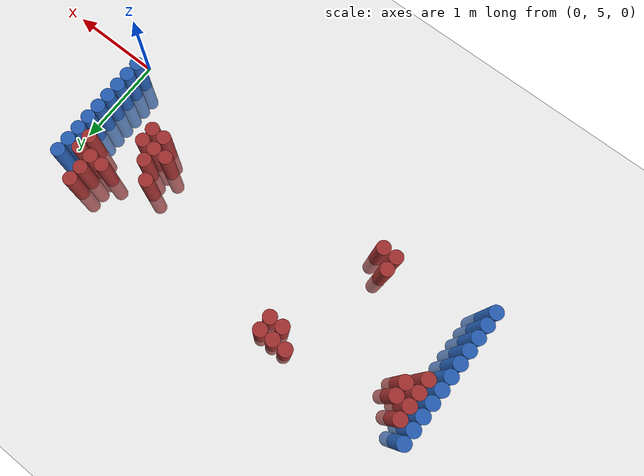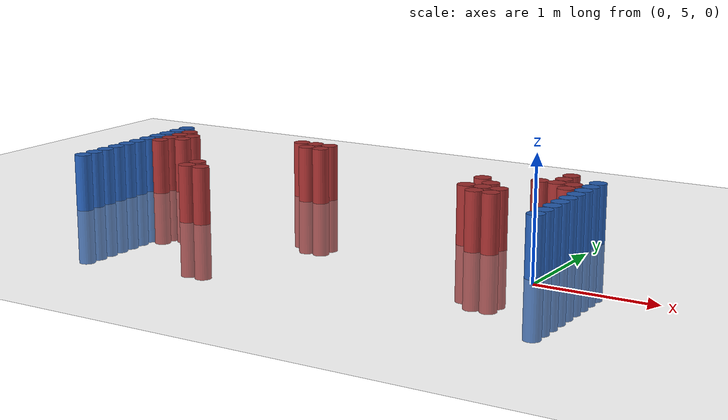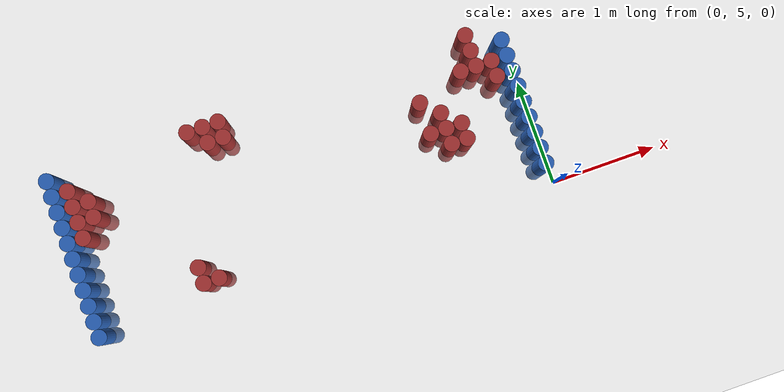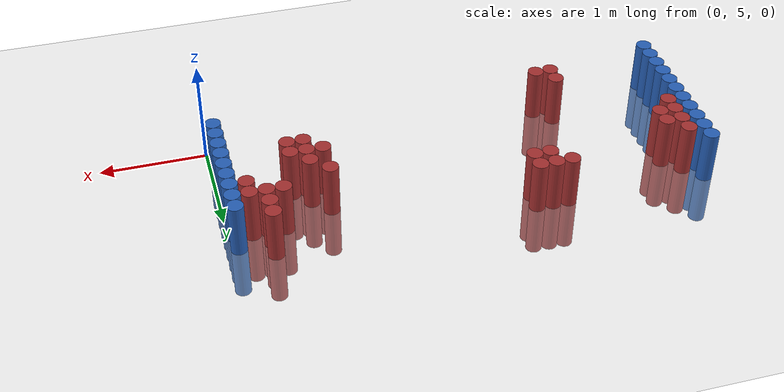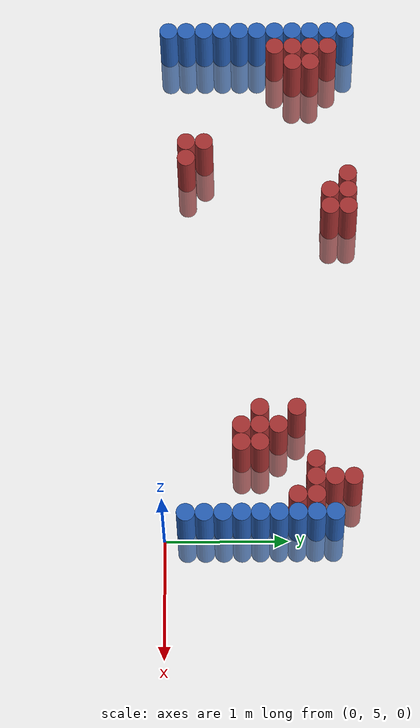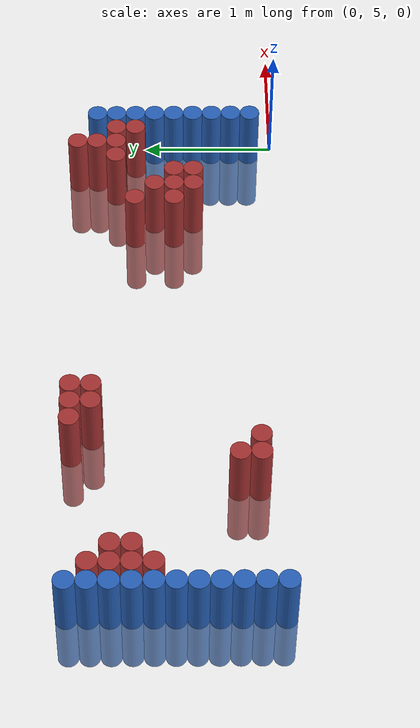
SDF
<sdf version="1.6">
 <world name="default">
  <model name="ground_plane">
   <static>1</static>
   <link name="link">
    <collision name="collision">
     <geometry><plane><normal>0 0 1</normal><size>100 100</size></plane></geometry>
     <surface><friction><ode><mu>100</mu><mu2>50</mu2></ode></friction></surface>
    </collision>
    <visual name="visual">
     <cast_shadows>0</cast_shadows>
     <geometry><plane><normal>0 0 1</normal><size>100 100</size></plane></geometry>
     <material>
      <script><uri>file://media/materials/scripts/gazebo.material</uri><name>Gazebo/Grey</name></script>
     </material>
    </visual>
   </link>
  </model>
  <model name="unit_cylinder_95">
   <static>1</static>
   <pose>-4.425000 5.025000 0.000000 0.000000 0.000000 0.000000</pose>
   <link name="link">
    <inertial>
     <mass>1</mass>
     <inertia><ixx>0.145833</ixx><ixy>0</ixy><ixz>0</ixz><iyy>0.145833</iyy><iyz>0</iyz><izz>0.125</izz></inertia>
    </inertial>
    <collision name="collision">
     <geometry><cylinder><radius>0.075000</radius><length>1</length></cylinder></geometry>
    </collision>
    <visual name="visual">
     <geometry><cylinder><radius>0.075000</radius><length>1</length></cylinder></geometry>
     <material>
      <ambient>0.152000 0.379000 0.720000 1</ambient>
      <diffuse>0.152000 0.379000 0.720000 1</diffuse>
     </material>
     <material>
      <script><name>Gazebo/Grey</name><uri>file://media/materials/scripts/gazebo.material</uri></script>
     </material>
    </visual>
   </link>
  </model>
  <model name="unit_cylinder_96">
   <static>1</static>
   <pose>-4.425000 5.175000 0.000000 0.000000 0.000000 0.000000</pose>
   <link name="link">
    <inertial>
     <mass>1</mass>
     <inertia><ixx>0.145833</ixx><ixy>0</ixy><ixz>0</ixz><iyy>0.145833</iyy><iyz>0</iyz><izz>0.125</izz></inertia>
    </inertial>
    <collision name="collision">
     <geometry><cylinder><radius>0.075000</radius><length>1</length></cylinder></geometry>
    </collision>
    <visual name="visual">
     <geometry><cylinder><radius>0.075000</radius><length>1</length></cylinder></geometry>
     <material>
      <ambient>0.152000 0.379000 0.720000 1</ambient>
      <diffuse>0.152000 0.379000 0.720000 1</diffuse>
     </material>
     <material>
      <script><name>Gazebo/Grey</name><uri>file://media/materials/scripts/gazebo.material</uri></script>
     </material>
    </visual>
   </link>
  </model>
  <model name="unit_cylinder_97">
   <static>1</static>
   <pose>-4.425000 5.325000 0.000000 0.000000 0.000000 0.000000</pose>
   <link name="link">
    <inertial>
     <mass>1</mass>
     <inertia><ixx>0.145833</ixx><ixy>0</ixy><ixz>0</ixz><iyy>0.145833</iyy><iyz>0</iyz><izz>0.125</izz></inertia>
    </inertial>
    <collision name="collision">
     <geometry><cylinder><radius>0.075000</radius><length>1</length></cylinder></geometry>
    </collision>
    <visual name="visual">
     <geometry><cylinder><radius>0.075000</radius><length>1</length></cylinder></geometry>
     <material>
      <ambient>0.152000 0.379000 0.720000 1</ambient>
      <diffuse>0.152000 0.379000 0.720000 1</diffuse>
     </material>
     <material>
      <script><name>Gazebo/Grey</name><uri>file://media/materials/scripts/gazebo.material</uri></script>
     </material>
    </visual>
   </link>
  </model>
  <model name="unit_cylinder_98">
   <static>1</static>
   <pose>-4.425000 5.475000 0.000000 0.000000 0.000000 0.000000</pose>
   <link name="link">
    <inertial>
     <mass>1</mass>
     <inertia><ixx>0.145833</ixx><ixy>0</ixy><ixz>0</ixz><iyy>0.145833</iyy><iyz>0</iyz><izz>0.125</izz></inertia>
    </inertial>
    <collision name="collision">
     <geometry><cylinder><radius>0.075000</radius><length>1</length></cylinder></geometry>
    </collision>
    <visual name="visual">
     <geometry><cylinder><radius>0.075000</radius><length>1</length></cylinder></geometry>
     <material>
      <ambient>0.152000 0.379000 0.720000 1</ambient>
      <diffuse>0.152000 0.379000 0.720000 1</diffuse>
     </material>
     <material>
      <script><name>Gazebo/Grey</name><uri>file://media/materials/scripts/gazebo.material</uri></script>
     </material>
    </visual>
   </link>
  </model>
  <model name="unit_cylinder_99">
   <static>1</static>
   <pose>-4.425000 5.625000 0.000000 0.000000 0.000000 0.000000</pose>
   <link name="link">
    <inertial>
     <mass>1</mass>
     <inertia><ixx>0.145833</ixx><ixy>0</ixy><ixz>0</ixz><iyy>0.145833</iyy><iyz>0</iyz><izz>0.125</izz></inertia>
    </inertial>
    <collision name="collision">
     <geometry><cylinder><radius>0.075000</radius><length>1</length></cylinder></geometry>
    </collision>
    <visual name="visual">
     <geometry><cylinder><radius>0.075000</radius><length>1</length></cylinder></geometry>
     <material>
      <ambient>0.152000 0.379000 0.720000 1</ambient>
      <diffuse>0.152000 0.379000 0.720000 1</diffuse>
     </material>
     <material>
      <script><name>Gazebo/Grey</name><uri>file://media/materials/scripts/gazebo.material</uri></script>
     </material>
    </visual>
   </link>
  </model>
  <model name="unit_cylinder_100">
   <static>1</static>
   <pose>-4.425000 5.775000 0.000000 0.000000 0.000000 0.000000</pose>
   <link name="link">
    <inertial>
     <mass>1</mass>
     <inertia><ixx>0.145833</ixx><ixy>0</ixy><ixz>0</ixz><iyy>0.145833</iyy><iyz>0</iyz><izz>0.125</izz></inertia>
    </inertial>
    <collision name="collision">
     <geometry><cylinder><radius>0.075000</radius><length>1</length></cylinder></geometry>
    </collision>
    <visual name="visual">
     <geometry><cylinder><radius>0.075000</radius><length>1</length></cylinder></geometry>
     <material>
      <ambient>0.152000 0.379000 0.720000 1</ambient>
      <diffuse>0.152000 0.379000 0.720000 1</diffuse>
     </material>
     <material>
      <script><name>Gazebo/Grey</name><uri>file://media/materials/scripts/gazebo.material</uri></script>
     </material>
    </visual>
   </link>
  </model>
  <model name="unit_cylinder_101">
   <static>1</static>
   <pose>-4.425000 5.925000 0.000000 0.000000 0.000000 0.000000</pose>
   <link name="link">
    <inertial>
     <mass>1</mass>
     <inertia><ixx>0.145833</ixx><ixy>0</ixy><ixz>0</ixz><iyy>0.145833</iyy><iyz>0</iyz><izz>0.125</izz></inertia>
    </inertial>
    <collision name="collision">
     <geometry><cylinder><radius>0.075000</radius><length>1</length></cylinder></geometry>
    </collision>
    <visual name="visual">
     <geometry><cylinder><radius>0.075000</radius><length>1</length></cylinder></geometry>
     <material>
      <ambient>0.152000 0.379000 0.720000 1</ambient>
      <diffuse>0.152000 0.379000 0.720000 1</diffuse>
     </material>
     <material>
      <script><name>Gazebo/Grey</name><uri>file://media/materials/scripts/gazebo.material</uri></script>
     </material>
    </visual>
   </link>
  </model>
  <model name="unit_cylinder_102">
   <static>1</static>
   <pose>-4.425000 6.075000 0.000000 0.000000 0.000000 0.000000</pose>
   <link name="link">
    <inertial>
     <mass>1</mass>
     <inertia><ixx>0.145833</ixx><ixy>0</ixy><ixz>0</ixz><iyy>0.145833</iyy><iyz>0</iyz><izz>0.125</izz></inertia>
    </inertial>
    <collision name="collision">
     <geometry><cylinder><radius>0.075000</radius><length>1</length></cylinder></geometry>
    </collision>
    <visual name="visual">
     <geometry><cylinder><radius>0.075000</radius><length>1</length></cylinder></geometry>
     <material>
      <ambient>0.152000 0.379000 0.720000 1</ambient>
      <diffuse>0.152000 0.379000 0.720000 1</diffuse>
     </material>
     <material>
      <script><name>Gazebo/Grey</name><uri>file://media/materials/scripts/gazebo.material</uri></script>
     </material>
    </visual>
   </link>
  </model>
  <model name="unit_cylinder_103">
   <static>1</static>
   <pose>-4.425000 6.225000 0.000000 0.000000 0.000000 0.000000</pose>
   <link name="link">
    <inertial>
     <mass>1</mass>
     <inertia><ixx>0.145833</ixx><ixy>0</ixy><ixz>0</ixz><iyy>0.145833</iyy><iyz>0</iyz><izz>0.125</izz></inertia>
    </inertial>
    <collision name="collision">
     <geometry><cylinder><radius>0.075000</radius><length>1</length></cylinder></geometry>
    </collision>
    <visual name="visual">
     <geometry><cylinder><radius>0.075000</radius><length>1</length></cylinder></geometry>
     <material>
      <ambient>0.152000 0.379000 0.720000 1</ambient>
      <diffuse>0.152000 0.379000 0.720000 1</diffuse>
     </material>
     <material>
      <script><name>Gazebo/Grey</name><uri>file://media/materials/scripts/gazebo.material</uri></script>
     </material>
    </visual>
   </link>
  </model>
  <model name="unit_cylinder_104">
   <static>1</static>
   <pose>-4.425000 6.375000 0.000000 0.000000 0.000000 0.000000</pose>
   <link name="link">
    <inertial>
     <mass>1</mass>
     <inertia><ixx>0.145833</ixx><ixy>0</ixy><ixz>0</ixz><iyy>0.145833</iyy><iyz>0</iyz><izz>0.125</izz></inertia>
    </inertial>
    <collision name="collision">
     <geometry><cylinder><radius>0.075000</radius><length>1</length></cylinder></geometry>
    </collision>
    <visual name="visual">
     <geometry><cylinder><radius>0.075000</radius><length>1</length></cylinder></geometry>
     <material>
      <ambient>0.152000 0.379000 0.720000 1</ambient>
      <diffuse>0.152000 0.379000 0.720000 1</diffuse>
     </material>
     <material>
      <script><name>Gazebo/Grey</name><uri>file://media/materials/scripts/gazebo.material</uri></script>
     </material>
    </visual>
   </link>
  </model>
  <model name="unit_cylinder_105">
   <static>1</static>
   <pose>-4.425000 6.525000 0.000000 0.000000 0.000000 0.000000</pose>
   <link name="link">
    <inertial>
     <mass>1</mass>
     <inertia><ixx>0.145833</ixx><ixy>0</ixy><ixz>0</ixz><iyy>0.145833</iyy><iyz>0</iyz><izz>0.125</izz></inertia>
    </inertial>
    <collision name="collision">
     <geometry><cylinder><radius>0.075000</radius><length>1</length></cylinder></geometry>
    </collision>
    <visual name="visual">
     <geometry><cylinder><radius>0.075000</radius><length>1</length></cylinder></geometry>
     <material>
      <ambient>0.152000 0.379000 0.720000 1</ambient>
      <diffuse>0.152000 0.379000 0.720000 1</diffuse>
     </material>
     <material>
      <script><name>Gazebo/Grey</name><uri>file://media/materials/scripts/gazebo.material</uri></script>
     </material>
    </visual>
   </link>
  </model>
  <model name="unit_cylinder_126">
   <static>1</static>
   <pose>-4.275000 5.925000 0.000000 0.000000 0.000000 0.000000</pose>
   <link name="link">
    <inertial>
     <mass>1</mass>
     <inertia><ixx>0.145833</ixx><ixy>0</ixy><ixz>0</ixz><iyy>0.145833</iyy><iyz>0</iyz><izz>0.125</izz></inertia>
    </inertial>
    <collision name="collision">
     <geometry><cylinder><radius>0.075000</radius><length>1</length></cylinder></geometry>
    </collision>
    <visual name="visual">
     <geometry><cylinder><radius>0.075000</radius><length>1</length></cylinder></geometry>
     <material>
      <ambient>0.648000 0.192000 0.192000 1</ambient>
      <diffuse>0.648000 0.192000 0.192000 1</diffuse>
     </material>
     <material>
      <script><name>Gazebo/Grey</name><uri>file://media/materials/scripts/gazebo.material</uri></script>
     </material>
    </visual>
   </link>
  </model>
  <model name="unit_cylinder_127">
   <static>1</static>
   <pose>-4.275000 6.075000 0.000000 0.000000 0.000000 0.000000</pose>
   <link name="link">
    <inertial>
     <mass>1</mass>
     <inertia><ixx>0.145833</ixx><ixy>0</ixy><ixz>0</ixz><iyy>0.145833</iyy><iyz>0</iyz><izz>0.125</izz></inertia>
    </inertial>
    <collision name="collision">
     <geometry><cylinder><radius>0.075000</radius><length>1</length></cylinder></geometry>
    </collision>
    <visual name="visual">
     <geometry><cylinder><radius>0.075000</radius><length>1</length></cylinder></geometry>
     <material>
      <ambient>0.648000 0.192000 0.192000 1</ambient>
      <diffuse>0.648000 0.192000 0.192000 1</diffuse>
     </material>
     <material>
      <script><name>Gazebo/Grey</name><uri>file://media/materials/scripts/gazebo.material</uri></script>
     </material>
    </visual>
   </link>
  </model>
  <model name="unit_cylinder_128">
   <static>1</static>
   <pose>-4.275000 6.225000 0.000000 0.000000 0.000000 0.000000</pose>
   <link name="link">
    <inertial>
     <mass>1</mass>
     <inertia><ixx>0.145833</ixx><ixy>0</ixy><ixz>0</ixz><iyy>0.145833</iyy><iyz>0</iyz><izz>0.125</izz></inertia>
    </inertial>
    <collision name="collision">
     <geometry><cylinder><radius>0.075000</radius><length>1</length></cylinder></geometry>
    </collision>
    <visual name="visual">
     <geometry><cylinder><radius>0.075000</radius><length>1</length></cylinder></geometry>
     <material>
      <ambient>0.648000 0.192000 0.192000 1</ambient>
      <diffuse>0.648000 0.192000 0.192000 1</diffuse>
     </material>
     <material>
      <script><name>Gazebo/Grey</name><uri>file://media/materials/scripts/gazebo.material</uri></script>
     </material>
    </visual>
   </link>
  </model>
  <model name="unit_cylinder_129">
   <static>1</static>
   <pose>-4.275000 6.375000 0.000000 0.000000 0.000000 0.000000</pose>
   <link name="link">
    <inertial>
     <mass>1</mass>
     <inertia><ixx>0.145833</ixx><ixy>0</ixy><ixz>0</ixz><iyy>0.145833</iyy><iyz>0</iyz><izz>0.125</izz></inertia>
    </inertial>
    <collision name="collision">
     <geometry><cylinder><radius>0.075000</radius><length>1</length></cylinder></geometry>
    </collision>
    <visual name="visual">
     <geometry><cylinder><radius>0.075000</radius><length>1</length></cylinder></geometry>
     <material>
      <ambient>0.648000 0.192000 0.192000 1</ambient>
      <diffuse>0.648000 0.192000 0.192000 1</diffuse>
     </material>
     <material>
      <script><name>Gazebo/Grey</name><uri>file://media/materials/scripts/gazebo.material</uri></script>
     </material>
    </visual>
   </link>
  </model>
  <model name="unit_cylinder_138">
   <static>1</static>
   <pose>-4.125000 6.075000 0.000000 0.000000 0.000000 0.000000</pose>
   <link name="link">
    <inertial>
     <mass>1</mass>
     <inertia><ixx>0.145833</ixx><ixy>0</ixy><ixz>0</ixz><iyy>0.145833</iyy><iyz>0</iyz><izz>0.125</izz></inertia>
    </inertial>
    <collision name="collision">
     <geometry><cylinder><radius>0.075000</radius><length>1</length></cylinder></geometry>
    </collision>
    <visual name="visual">
     <geometry><cylinder><radius>0.075000</radius><length>1</length></cylinder></geometry>
     <material>
      <ambient>0.648000 0.192000 0.192000 1</ambient>
      <diffuse>0.648000 0.192000 0.192000 1</diffuse>
     </material>
     <material>
      <script><name>Gazebo/Grey</name><uri>file://media/materials/scripts/gazebo.material</uri></script>
     </material>
    </visual>
   </link>
  </model>
  <model name="unit_cylinder_139">
   <static>1</static>
   <pose>-4.125000 6.225000 0.000000 0.000000 0.000000 0.000000</pose>
   <link name="link">
    <inertial>
     <mass>1</mass>
     <inertia><ixx>0.145833</ixx><ixy>0</ixy><ixz>0</ixz><iyy>0.145833</iyy><iyz>0</iyz><izz>0.125</izz></inertia>
    </inertial>
    <collision name="collision">
     <geometry><cylinder><radius>0.075000</radius><length>1</length></cylinder></geometry>
    </collision>
    <visual name="visual">
     <geometry><cylinder><radius>0.075000</radius><length>1</length></cylinder></geometry>
     <material>
      <ambient>0.648000 0.192000 0.192000 1</ambient>
      <diffuse>0.648000 0.192000 0.192000 1</diffuse>
     </material>
     <material>
      <script><name>Gazebo/Grey</name><uri>file://media/materials/scripts/gazebo.material</uri></script>
     </material>
    </visual>
   </link>
  </model>
  <model name="unit_cylinder_164">
   <static>1</static>
   <pose>-3.375000 5.175000 0.000000 0.000000 0.000000 0.000000</pose>
   <link name="link">
    <inertial>
     <mass>1</mass>
     <inertia><ixx>0.145833</ixx><ixy>0</ixy><ixz>0</ixz><iyy>0.145833</iyy><iyz>0</iyz><izz>0.125</izz></inertia>
    </inertial>
    <collision name="collision">
     <geometry><cylinder><radius>0.075000</radius><length>1</length></cylinder></geometry>
    </collision>
    <visual name="visual">
     <geometry><cylinder><radius>0.075000</radius><length>1</length></cylinder></geometry>
     <material>
      <ambient>0.648000 0.192000 0.192000 1</ambient>
      <diffuse>0.648000 0.192000 0.192000 1</diffuse>
     </material>
     <material>
      <script><name>Gazebo/Grey</name><uri>file://media/materials/scripts/gazebo.material</uri></script>
     </material>
    </visual>
   </link>
  </model>
  <model name="unit_cylinder_165">
   <static>1</static>
   <pose>-3.375000 5.325000 0.000000 0.000000 0.000000 0.000000</pose>
   <link name="link">
    <inertial>
     <mass>1</mass>
     <inertia><ixx>0.145833</ixx><ixy>0</ixy><ixz>0</ixz><iyy>0.145833</iyy><iyz>0</iyz><izz>0.125</izz></inertia>
    </inertial>
    <collision name="collision">
     <geometry><cylinder><radius>0.075000</radius><length>1</length></cylinder></geometry>
    </collision>
    <visual name="visual">
     <geometry><cylinder><radius>0.075000</radius><length>1</length></cylinder></geometry>
     <material>
      <ambient>0.648000 0.192000 0.192000 1</ambient>
      <diffuse>0.648000 0.192000 0.192000 1</diffuse>
     </material>
     <material>
      <script><name>Gazebo/Grey</name><uri>file://media/materials/scripts/gazebo.material</uri></script>
     </material>
    </visual>
   </link>
  </model>
  <model name="unit_cylinder_170">
   <static>1</static>
   <pose>-3.225000 5.175000 0.000000 0.000000 0.000000 0.000000</pose>
   <link name="link">
    <inertial>
     <mass>1</mass>
     <inertia><ixx>0.145833</ixx><ixy>0</ixy><ixz>0</ixz><iyy>0.145833</iyy><iyz>0</iyz><izz>0.125</izz></inertia>
    </inertial>
    <collision name="collision">
     <geometry><cylinder><radius>0.075000</radius><length>1</length></cylinder></geometry>
    </collision>
    <visual name="visual">
     <geometry><cylinder><radius>0.075000</radius><length>1</length></cylinder></geometry>
     <material>
      <ambient>0.648000 0.192000 0.192000 1</ambient>
      <diffuse>0.648000 0.192000 0.192000 1</diffuse>
     </material>
     <material>
      <script><name>Gazebo/Grey</name><uri>file://media/materials/scripts/gazebo.material</uri></script>
     </material>
    </visual>
   </link>
  </model>
  <model name="unit_cylinder_174">
   <static>1</static>
   <pose>-3.075000 6.525000 0.000000 0.000000 0.000000 0.000000</pose>
   <link name="link">
    <inertial>
     <mass>1</mass>
     <inertia><ixx>0.145833</ixx><ixy>0</ixy><ixz>0</ixz><iyy>0.145833</iyy><iyz>0</iyz><izz>0.125</izz></inertia>
    </inertial>
    <collision name="collision">
     <geometry><cylinder><radius>0.075000</radius><length>1</length></cylinder></geometry>
    </collision>
    <visual name="visual">
     <geometry><cylinder><radius>0.075000</radius><length>1</length></cylinder></geometry>
     <material>
      <ambient>0.648000 0.192000 0.192000 1</ambient>
      <diffuse>0.648000 0.192000 0.192000 1</diffuse>
     </material>
     <material>
      <script><name>Gazebo/Grey</name><uri>file://media/materials/scripts/gazebo.material</uri></script>
     </material>
    </visual>
   </link>
  </model>
  <model name="unit_cylinder_179">
   <static>1</static>
   <pose>-2.925000 6.375000 0.000000 0.000000 0.000000 0.000000</pose>
   <link name="link">
    <inertial>
     <mass>1</mass>
     <inertia><ixx>0.145833</ixx><ixy>0</ixy><ixz>0</ixz><iyy>0.145833</iyy><iyz>0</iyz><izz>0.125</izz></inertia>
    </inertial>
    <collision name="collision">
     <geometry><cylinder><radius>0.075000</radius><length>1</length></cylinder></geometry>
    </collision>
    <visual name="visual">
     <geometry><cylinder><radius>0.075000</radius><length>1</length></cylinder></geometry>
     <material>
      <ambient>0.648000 0.192000 0.192000 1</ambient>
      <diffuse>0.648000 0.192000 0.192000 1</diffuse>
     </material>
     <material>
      <script><name>Gazebo/Grey</name><uri>file://media/materials/scripts/gazebo.material</uri></script>
     </material>
    </visual>
   </link>
  </model>
  <model name="unit_cylinder_180">
   <static>1</static>
   <pose>-2.925000 6.525000 0.000000 0.000000 0.000000 0.000000</pose>
   <link name="link">
    <inertial>
     <mass>1</mass>
     <inertia><ixx>0.145833</ixx><ixy>0</ixy><ixz>0</ixz><iyy>0.145833</iyy><iyz>0</iyz><izz>0.125</izz></inertia>
    </inertial>
    <collision name="collision">
     <geometry><cylinder><radius>0.075000</radius><length>1</length></cylinder></geometry>
    </collision>
    <visual name="visual">
     <geometry><cylinder><radius>0.075000</radius><length>1</length></cylinder></geometry>
     <material>
      <ambient>0.648000 0.192000 0.192000 1</ambient>
      <diffuse>0.648000 0.192000 0.192000 1</diffuse>
     </material>
     <material>
      <script><name>Gazebo/Grey</name><uri>file://media/materials/scripts/gazebo.material</uri></script>
     </material>
    </visual>
   </link>
  </model>
  <model name="unit_cylinder_188">
   <static>1</static>
   <pose>-2.775000 6.375000 0.000000 0.000000 0.000000 0.000000</pose>
   <link name="link">
    <inertial>
     <mass>1</mass>
     <inertia><ixx>0.145833</ixx><ixy>0</ixy><ixz>0</ixz><iyy>0.145833</iyy><iyz>0</iyz><izz>0.125</izz></inertia>
    </inertial>
    <collision name="collision">
     <geometry><cylinder><radius>0.075000</radius><length>1</length></cylinder></geometry>
    </collision>
    <visual name="visual">
     <geometry><cylinder><radius>0.075000</radius><length>1</length></cylinder></geometry>
     <material>
      <ambient>0.648000 0.192000 0.192000 1</ambient>
      <diffuse>0.648000 0.192000 0.192000 1</diffuse>
     </material>
     <material>
      <script><name>Gazebo/Grey</name><uri>file://media/materials/scripts/gazebo.material</uri></script>
     </material>
    </visual>
   </link>
  </model>
  <model name="unit_cylinder_189">
   <static>1</static>
   <pose>-2.775000 6.525000 0.000000 0.000000 0.000000 0.000000</pose>
   <link name="link">
    <inertial>
     <mass>1</mass>
     <inertia><ixx>0.145833</ixx><ixy>0</ixy><ixz>0</ixz><iyy>0.145833</iyy><iyz>0</iyz><izz>0.125</izz></inertia>
    </inertial>
    <collision name="collision">
     <geometry><cylinder><radius>0.075000</radius><length>1</length></cylinder></geometry>
    </collision>
    <visual name="visual">
     <geometry><cylinder><radius>0.075000</radius><length>1</length></cylinder></geometry>
     <material>
      <ambient>0.648000 0.192000 0.192000 1</ambient>
      <diffuse>0.648000 0.192000 0.192000 1</diffuse>
     </material>
     <material>
      <script><name>Gazebo/Grey</name><uri>file://media/materials/scripts/gazebo.material</uri></script>
     </material>
    </visual>
   </link>
  </model>
  <model name="unit_cylinder_213">
   <static>1</static>
   <pose>-0.975000 5.775000 0.000000 0.000000 0.000000 0.000000</pose>
   <link name="link">
    <inertial>
     <mass>1</mass>
     <inertia><ixx>0.145833</ixx><ixy>0</ixy><ixz>0</ixz><iyy>0.145833</iyy><iyz>0</iyz><izz>0.125</izz></inertia>
    </inertial>
    <collision name="collision">
     <geometry><cylinder><radius>0.075000</radius><length>1</length></cylinder></geometry>
    </collision>
    <visual name="visual">
     <geometry><cylinder><radius>0.075000</radius><length>1</length></cylinder></geometry>
     <material>
      <ambient>0.648000 0.192000 0.192000 1</ambient>
      <diffuse>0.648000 0.192000 0.192000 1</diffuse>
     </material>
     <material>
      <script><name>Gazebo/Grey</name><uri>file://media/materials/scripts/gazebo.material</uri></script>
     </material>
    </visual>
   </link>
  </model>
  <model name="unit_cylinder_214">
   <static>1</static>
   <pose>-0.975000 6.075000 0.000000 0.000000 0.000000 0.000000</pose>
   <link name="link">
    <inertial>
     <mass>1</mass>
     <inertia><ixx>0.145833</ixx><ixy>0</ixy><ixz>0</ixz><iyy>0.145833</iyy><iyz>0</iyz><izz>0.125</izz></inertia>
    </inertial>
    <collision name="collision">
     <geometry><cylinder><radius>0.075000</radius><length>1</length></cylinder></geometry>
    </collision>
    <visual name="visual">
     <geometry><cylinder><radius>0.075000</radius><length>1</length></cylinder></geometry>
     <material>
      <ambient>0.648000 0.192000 0.192000 1</ambient>
      <diffuse>0.648000 0.192000 0.192000 1</diffuse>
     </material>
     <material>
      <script><name>Gazebo/Grey</name><uri>file://media/materials/scripts/gazebo.material</uri></script>
     </material>
    </visual>
   </link>
  </model>
  <model name="unit_cylinder_216">
   <static>1</static>
   <pose>-0.825000 5.625000 0.000000 0.000000 0.000000 0.000000</pose>
   <link name="link">
    <inertial>
     <mass>1</mass>
     <inertia><ixx>0.145833</ixx><ixy>0</ixy><ixz>0</ixz><iyy>0.145833</iyy><iyz>0</iyz><izz>0.125</izz></inertia>
    </inertial>
    <collision name="collision">
     <geometry><cylinder><radius>0.075000</radius><length>1</length></cylinder></geometry>
    </collision>
    <visual name="visual">
     <geometry><cylinder><radius>0.075000</radius><length>1</length></cylinder></geometry>
     <material>
      <ambient>0.648000 0.192000 0.192000 1</ambient>
      <diffuse>0.648000 0.192000 0.192000 1</diffuse>
     </material>
     <material>
      <script><name>Gazebo/Grey</name><uri>file://media/materials/scripts/gazebo.material</uri></script>
     </material>
    </visual>
   </link>
  </model>
  <model name="unit_cylinder_217">
   <static>1</static>
   <pose>-0.825000 5.775000 0.000000 0.000000 0.000000 0.000000</pose>
   <link name="link">
    <inertial>
     <mass>1</mass>
     <inertia><ixx>0.145833</ixx><ixy>0</ixy><ixz>0</ixz><iyy>0.145833</iyy><iyz>0</iyz><izz>0.125</izz></inertia>
    </inertial>
    <collision name="collision">
     <geometry><cylinder><radius>0.075000</radius><length>1</length></cylinder></geometry>
    </collision>
    <visual name="visual">
     <geometry><cylinder><radius>0.075000</radius><length>1</length></cylinder></geometry>
     <material>
      <ambient>0.648000 0.192000 0.192000 1</ambient>
      <diffuse>0.648000 0.192000 0.192000 1</diffuse>
     </material>
     <material>
      <script><name>Gazebo/Grey</name><uri>file://media/materials/scripts/gazebo.material</uri></script>
     </material>
    </visual>
   </link>
  </model>
  <model name="unit_cylinder_218">
   <static>1</static>
   <pose>-0.825000 5.925000 0.000000 0.000000 0.000000 0.000000</pose>
   <link name="link">
    <inertial>
     <mass>1</mass>
     <inertia><ixx>0.145833</ixx><ixy>0</ixy><ixz>0</ixz><iyy>0.145833</iyy><iyz>0</iyz><izz>0.125</izz></inertia>
    </inertial>
    <collision name="collision">
     <geometry><cylinder><radius>0.075000</radius><length>1</length></cylinder></geometry>
    </collision>
    <visual name="visual">
     <geometry><cylinder><radius>0.075000</radius><length>1</length></cylinder></geometry>
     <material>
      <ambient>0.648000 0.192000 0.192000 1</ambient>
      <diffuse>0.648000 0.192000 0.192000 1</diffuse>
     </material>
     <material>
      <script><name>Gazebo/Grey</name><uri>file://media/materials/scripts/gazebo.material</uri></script>
     </material>
    </visual>
   </link>
  </model>
  <model name="unit_cylinder_221">
   <static>1</static>
   <pose>-0.675000 5.625000 0.000000 0.000000 0.000000 0.000000</pose>
   <link name="link">
    <inertial>
     <mass>1</mass>
     <inertia><ixx>0.145833</ixx><ixy>0</ixy><ixz>0</ixz><iyy>0.145833</iyy><iyz>0</iyz><izz>0.125</izz></inertia>
    </inertial>
    <collision name="collision">
     <geometry><cylinder><radius>0.075000</radius><length>1</length></cylinder></geometry>
    </collision>
    <visual name="visual">
     <geometry><cylinder><radius>0.075000</radius><length>1</length></cylinder></geometry>
     <material>
      <ambient>0.648000 0.192000 0.192000 1</ambient>
      <diffuse>0.648000 0.192000 0.192000 1</diffuse>
     </material>
     <material>
      <script><name>Gazebo/Grey</name><uri>file://media/materials/scripts/gazebo.material</uri></script>
     </material>
    </visual>
   </link>
  </model>
  <model name="unit_cylinder_222">
   <static>1</static>
   <pose>-0.675000 5.775000 0.000000 0.000000 0.000000 0.000000</pose>
   <link name="link">
    <inertial>
     <mass>1</mass>
     <inertia><ixx>0.145833</ixx><ixy>0</ixy><ixz>0</ixz><iyy>0.145833</iyy><iyz>0</iyz><izz>0.125</izz></inertia>
    </inertial>
    <collision name="collision">
     <geometry><cylinder><radius>0.075000</radius><length>1</length></cylinder></geometry>
    </collision>
    <visual name="visual">
     <geometry><cylinder><radius>0.075000</radius><length>1</length></cylinder></geometry>
     <material>
      <ambient>0.648000 0.192000 0.192000 1</ambient>
      <diffuse>0.648000 0.192000 0.192000 1</diffuse>
     </material>
     <material>
      <script><name>Gazebo/Grey</name><uri>file://media/materials/scripts/gazebo.material</uri></script>
     </material>
    </visual>
   </link>
  </model>
  <model name="unit_cylinder_223">
   <static>1</static>
   <pose>-0.525000 6.225000 0.000000 0.000000 0.000000 0.000000</pose>
   <link name="link">
    <inertial>
     <mass>1</mass>
     <inertia><ixx>0.145833</ixx><ixy>0</ixy><ixz>0</ixz><iyy>0.145833</iyy><iyz>0</iyz><izz>0.125</izz></inertia>
    </inertial>
    <collision name="collision">
     <geometry><cylinder><radius>0.075000</radius><length>1</length></cylinder></geometry>
    </collision>
    <visual name="visual">
     <geometry><cylinder><radius>0.075000</radius><length>1</length></cylinder></geometry>
     <material>
      <ambient>0.648000 0.192000 0.192000 1</ambient>
      <diffuse>0.648000 0.192000 0.192000 1</diffuse>
     </material>
     <material>
      <script><name>Gazebo/Grey</name><uri>file://media/materials/scripts/gazebo.material</uri></script>
     </material>
    </visual>
   </link>
  </model>
  <model name="unit_cylinder_229">
   <static>1</static>
   <pose>-0.375000 6.225000 0.000000 0.000000 0.000000 0.000000</pose>
   <link name="link">
    <inertial>
     <mass>1</mass>
     <inertia><ixx>0.145833</ixx><ixy>0</ixy><ixz>0</ixz><iyy>0.145833</iyy><iyz>0</iyz><izz>0.125</izz></inertia>
    </inertial>
    <collision name="collision">
     <geometry><cylinder><radius>0.075000</radius><length>1</length></cylinder></geometry>
    </collision>
    <visual name="visual">
     <geometry><cylinder><radius>0.075000</radius><length>1</length></cylinder></geometry>
     <material>
      <ambient>0.648000 0.192000 0.192000 1</ambient>
      <diffuse>0.648000 0.192000 0.192000 1</diffuse>
     </material>
     <material>
      <script><name>Gazebo/Grey</name><uri>file://media/materials/scripts/gazebo.material</uri></script>
     </material>
    </visual>
   </link>
  </model>
  <model name="unit_cylinder_230">
   <static>1</static>
   <pose>-0.375000 6.375000 0.000000 0.000000 0.000000 0.000000</pose>
   <link name="link">
    <inertial>
     <mass>1</mass>
     <inertia><ixx>0.145833</ixx><ixy>0</ixy><ixz>0</ixz><iyy>0.145833</iyy><iyz>0</iyz><izz>0.125</izz></inertia>
    </inertial>
    <collision name="collision">
     <geometry><cylinder><radius>0.075000</radius><length>1</length></cylinder></geometry>
    </collision>
    <visual name="visual">
     <geometry><cylinder><radius>0.075000</radius><length>1</length></cylinder></geometry>
     <material>
      <ambient>0.648000 0.192000 0.192000 1</ambient>
      <diffuse>0.648000 0.192000 0.192000 1</diffuse>
     </material>
     <material>
      <script><name>Gazebo/Grey</name><uri>file://media/materials/scripts/gazebo.material</uri></script>
     </material>
    </visual>
   </link>
  </model>
  <model name="unit_cylinder_231">
   <static>1</static>
   <pose>-0.375000 6.525000 0.000000 0.000000 0.000000 0.000000</pose>
   <link name="link">
    <inertial>
     <mass>1</mass>
     <inertia><ixx>0.145833</ixx><ixy>0</ixy><ixz>0</ixz><iyy>0.145833</iyy><iyz>0</iyz><izz>0.125</izz></inertia>
    </inertial>
    <collision name="collision">
     <geometry><cylinder><radius>0.075000</radius><length>1</length></cylinder></geometry>
    </collision>
    <visual name="visual">
     <geometry><cylinder><radius>0.075000</radius><length>1</length></cylinder></geometry>
     <material>
      <ambient>0.648000 0.192000 0.192000 1</ambient>
      <diffuse>0.648000 0.192000 0.192000 1</diffuse>
     </material>
     <material>
      <script><name>Gazebo/Grey</name><uri>file://media/materials/scripts/gazebo.material</uri></script>
     </material>
    </visual>
   </link>
  </model>
  <model name="unit_cylinder_243">
   <static>1</static>
   <pose>-0.225000 6.075000 0.000000 0.000000 0.000000 0.000000</pose>
   <link name="link">
    <inertial>
     <mass>1</mass>
     <inertia><ixx>0.145833</ixx><ixy>0</ixy><ixz>0</ixz><iyy>0.145833</iyy><iyz>0</iyz><izz>0.125</izz></inertia>
    </inertial>
    <collision name="collision">
     <geometry><cylinder><radius>0.075000</radius><length>1</length></cylinder></geometry>
    </collision>
    <visual name="visual">
     <geometry><cylinder><radius>0.075000</radius><length>1</length></cylinder></geometry>
     <material>
      <ambient>0.648000 0.192000 0.192000 1</ambient>
      <diffuse>0.648000 0.192000 0.192000 1</diffuse>
     </material>
     <material>
      <script><name>Gazebo/Grey</name><uri>file://media/materials/scripts/gazebo.material</uri></script>
     </material>
    </visual>
   </link>
  </model>
  <model name="unit_cylinder_244">
   <static>1</static>
   <pose>-0.225000 6.225000 0.000000 0.000000 0.000000 0.000000</pose>
   <link name="link">
    <inertial>
     <mass>1</mass>
     <inertia><ixx>0.145833</ixx><ixy>0</ixy><ixz>0</ixz><iyy>0.145833</iyy><iyz>0</iyz><izz>0.125</izz></inertia>
    </inertial>
    <collision name="collision">
     <geometry><cylinder><radius>0.075000</radius><length>1</length></cylinder></geometry>
    </collision>
    <visual name="visual">
     <geometry><cylinder><radius>0.075000</radius><length>1</length></cylinder></geometry>
     <material>
      <ambient>0.648000 0.192000 0.192000 1</ambient>
      <diffuse>0.648000 0.192000 0.192000 1</diffuse>
     </material>
     <material>
      <script><name>Gazebo/Grey</name><uri>file://media/materials/scripts/gazebo.material</uri></script>
     </material>
    </visual>
   </link>
  </model>
  <model name="unit_cylinder_254">
   <static>1</static>
   <pose>-0.075000 5.175000 0.000000 0.000000 0.000000 0.000000</pose>
   <link name="link">
    <inertial>
     <mass>1</mass>
     <inertia><ixx>0.145833</ixx><ixy>0</ixy><ixz>0</ixz><iyy>0.145833</iyy><iyz>0</iyz><izz>0.125</izz></inertia>
    </inertial>
    <collision name="collision">
     <geometry><cylinder><radius>0.075000</radius><length>1</length></cylinder></geometry>
    </collision>
    <visual name="visual">
     <geometry><cylinder><radius>0.075000</radius><length>1</length></cylinder></geometry>
     <material>
      <ambient>0.152000 0.379000 0.720000 1</ambient>
      <diffuse>0.152000 0.379000 0.720000 1</diffuse>
     </material>
     <material>
      <script><name>Gazebo/Grey</name><uri>file://media/materials/scripts/gazebo.material</uri></script>
     </material>
    </visual>
   </link>
  </model>
  <model name="unit_cylinder_255">
   <static>1</static>
   <pose>-0.075000 5.325000 0.000000 0.000000 0.000000 0.000000</pose>
   <link name="link">
    <inertial>
     <mass>1</mass>
     <inertia><ixx>0.145833</ixx><ixy>0</ixy><ixz>0</ixz><iyy>0.145833</iyy><iyz>0</iyz><izz>0.125</izz></inertia>
    </inertial>
    <collision name="collision">
     <geometry><cylinder><radius>0.075000</radius><length>1</length></cylinder></geometry>
    </collision>
    <visual name="visual">
     <geometry><cylinder><radius>0.075000</radius><length>1</length></cylinder></geometry>
     <material>
      <ambient>0.152000 0.379000 0.720000 1</ambient>
      <diffuse>0.152000 0.379000 0.720000 1</diffuse>
     </material>
     <material>
      <script><name>Gazebo/Grey</name><uri>file://media/materials/scripts/gazebo.material</uri></script>
     </material>
    </visual>
   </link>
  </model>
  <model name="unit_cylinder_256">
   <static>1</static>
   <pose>-0.075000 5.475000 0.000000 0.000000 0.000000 0.000000</pose>
   <link name="link">
    <inertial>
     <mass>1</mass>
     <inertia><ixx>0.145833</ixx><ixy>0</ixy><ixz>0</ixz><iyy>0.145833</iyy><iyz>0</iyz><izz>0.125</izz></inertia>
    </inertial>
    <collision name="collision">
     <geometry><cylinder><radius>0.075000</radius><length>1</length></cylinder></geometry>
    </collision>
    <visual name="visual">
     <geometry><cylinder><radius>0.075000</radius><length>1</length></cylinder></geometry>
     <material>
      <ambient>0.152000 0.379000 0.720000 1</ambient>
      <diffuse>0.152000 0.379000 0.720000 1</diffuse>
     </material>
     <material>
      <script><name>Gazebo/Grey</name><uri>file://media/materials/scripts/gazebo.material</uri></script>
     </material>
    </visual>
   </link>
  </model>
  <model name="unit_cylinder_257">
   <static>1</static>
   <pose>-0.075000 5.625000 0.000000 0.000000 0.000000 0.000000</pose>
   <link name="link">
    <inertial>
     <mass>1</mass>
     <inertia><ixx>0.145833</ixx><ixy>0</ixy><ixz>0</ixz><iyy>0.145833</iyy><iyz>0</iyz><izz>0.125</izz></inertia>
    </inertial>
    <collision name="collision">
     <geometry><cylinder><radius>0.075000</radius><length>1</length></cylinder></geometry>
    </collision>
    <visual name="visual">
     <geometry><cylinder><radius>0.075000</radius><length>1</length></cylinder></geometry>
     <material>
      <ambient>0.152000 0.379000 0.720000 1</ambient>
      <diffuse>0.152000 0.379000 0.720000 1</diffuse>
     </material>
     <material>
      <script><name>Gazebo/Grey</name><uri>file://media/materials/scripts/gazebo.material</uri></script>
     </material>
    </visual>
   </link>
  </model>
  <model name="unit_cylinder_258">
   <static>1</static>
   <pose>-0.075000 5.775000 0.000000 0.000000 0.000000 0.000000</pose>
   <link name="link">
    <inertial>
     <mass>1</mass>
     <inertia><ixx>0.145833</ixx><ixy>0</ixy><ixz>0</ixz><iyy>0.145833</iyy><iyz>0</iyz><izz>0.125</izz></inertia>
    </inertial>
    <collision name="collision">
     <geometry><cylinder><radius>0.075000</radius><length>1</length></cylinder></geometry>
    </collision>
    <visual name="visual">
     <geometry><cylinder><radius>0.075000</radius><length>1</length></cylinder></geometry>
     <material>
      <ambient>0.152000 0.379000 0.720000 1</ambient>
      <diffuse>0.152000 0.379000 0.720000 1</diffuse>
     </material>
     <material>
      <script><name>Gazebo/Grey</name><uri>file://media/materials/scripts/gazebo.material</uri></script>
     </material>
    </visual>
   </link>
  </model>
  <model name="unit_cylinder_259">
   <static>1</static>
   <pose>-0.075000 5.925000 0.000000 0.000000 0.000000 0.000000</pose>
   <link name="link">
    <inertial>
     <mass>1</mass>
     <inertia><ixx>0.145833</ixx><ixy>0</ixy><ixz>0</ixz><iyy>0.145833</iyy><iyz>0</iyz><izz>0.125</izz></inertia>
    </inertial>
    <collision name="collision">
     <geometry><cylinder><radius>0.075000</radius><length>1</length></cylinder></geometry>
    </collision>
    <visual name="visual">
     <geometry><cylinder><radius>0.075000</radius><length>1</length></cylinder></geometry>
     <material>
      <ambient>0.152000 0.379000 0.720000 1</ambient>
      <diffuse>0.152000 0.379000 0.720000 1</diffuse>
     </material>
     <material>
      <script><name>Gazebo/Grey</name><uri>file://media/materials/scripts/gazebo.material</uri></script>
     </material>
    </visual>
   </link>
  </model>
  <model name="unit_cylinder_260">
   <static>1</static>
   <pose>-0.075000 6.075000 0.000000 0.000000 0.000000 0.000000</pose>
   <link name="link">
    <inertial>
     <mass>1</mass>
     <inertia><ixx>0.145833</ixx><ixy>0</ixy><ixz>0</ixz><iyy>0.145833</iyy><iyz>0</iyz><izz>0.125</izz></inertia>
    </inertial>
    <collision name="collision">
     <geometry><cylinder><radius>0.075000</radius><length>1</length></cylinder></geometry>
    </collision>
    <visual name="visual">
     <geometry><cylinder><radius>0.075000</radius><length>1</length></cylinder></geometry>
     <material>
      <ambient>0.152000 0.379000 0.720000 1</ambient>
      <diffuse>0.152000 0.379000 0.720000 1</diffuse>
     </material>
     <material>
      <script><name>Gazebo/Grey</name><uri>file://media/materials/scripts/gazebo.material</uri></script>
     </material>
    </visual>
   </link>
  </model>
  <model name="unit_cylinder_261">
   <static>1</static>
   <pose>-0.075000 6.225000 0.000000 0.000000 0.000000 0.000000</pose>
   <link name="link">
    <inertial>
     <mass>1</mass>
     <inertia><ixx>0.145833</ixx><ixy>0</ixy><ixz>0</ixz><iyy>0.145833</iyy><iyz>0</iyz><izz>0.125</izz></inertia>
    </inertial>
    <collision name="collision">
     <geometry><cylinder><radius>0.075000</radius><length>1</length></cylinder></geometry>
    </collision>
    <visual name="visual">
     <geometry><cylinder><radius>0.075000</radius><length>1</length></cylinder></geometry>
     <material>
      <ambient>0.152000 0.379000 0.720000 1</ambient>
      <diffuse>0.152000 0.379000 0.720000 1</diffuse>
     </material>
     <material>
      <script><name>Gazebo/Grey</name><uri>file://media/materials/scripts/gazebo.material</uri></script>
     </material>
    </visual>
   </link>
  </model>
  <model name="unit_cylinder_262">
   <static>1</static>
   <pose>-0.075000 6.375000 0.000000 0.000000 0.000000 0.000000</pose>
   <link name="link">
    <inertial>
     <mass>1</mass>
     <inertia><ixx>0.145833</ixx><ixy>0</ixy><ixz>0</ixz><iyy>0.145833</iyy><iyz>0</iyz><izz>0.125</izz></inertia>
    </inertial>
    <collision name="collision">
     <geometry><cylinder><radius>0.075000</radius><length>1</length></cylinder></geometry>
    </collision>
    <visual name="visual">
     <geometry><cylinder><radius>0.075000</radius><length>1</length></cylinder></geometry>
     <material>
      <ambient>0.152000 0.379000 0.720000 1</ambient>
      <diffuse>0.152000 0.379000 0.720000 1</diffuse>
     </material>
     <material>
      <script><name>Gazebo/Grey</name><uri>file://media/materials/scripts/gazebo.material</uri></script>
     </material>
    </visual>
   </link>
  </model>
 </world>
</sdf>
